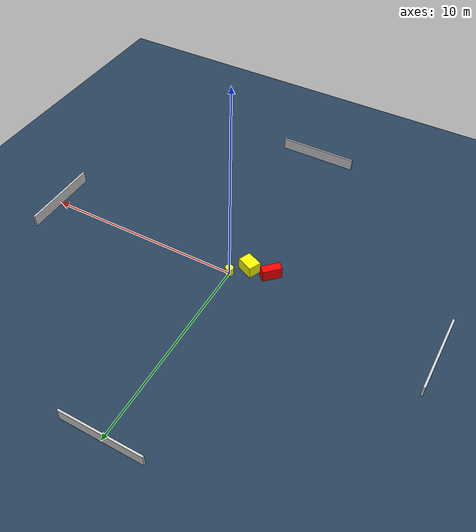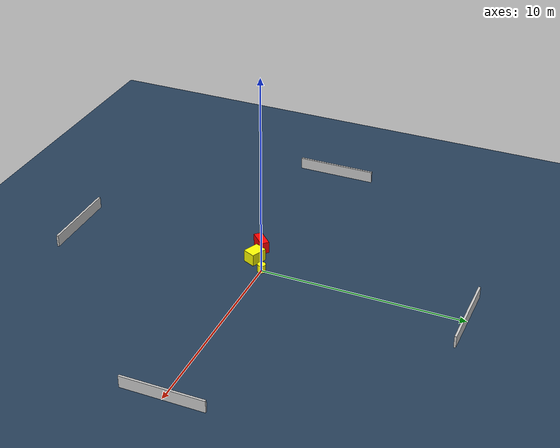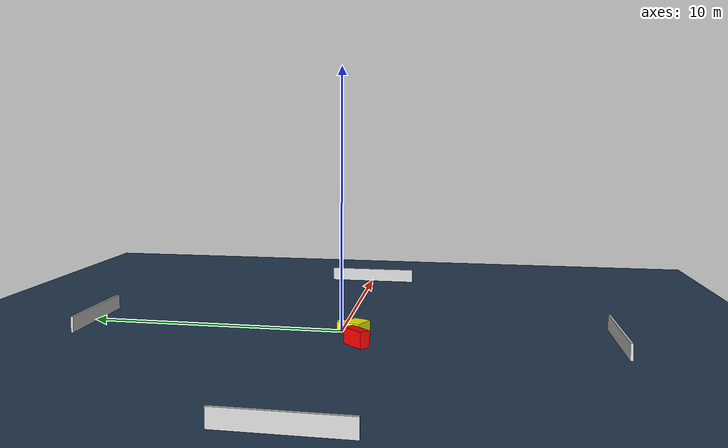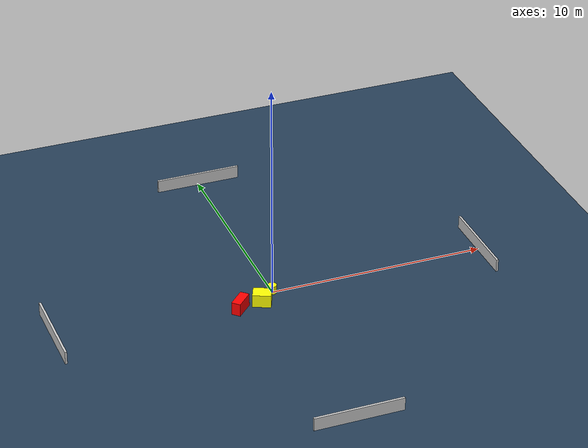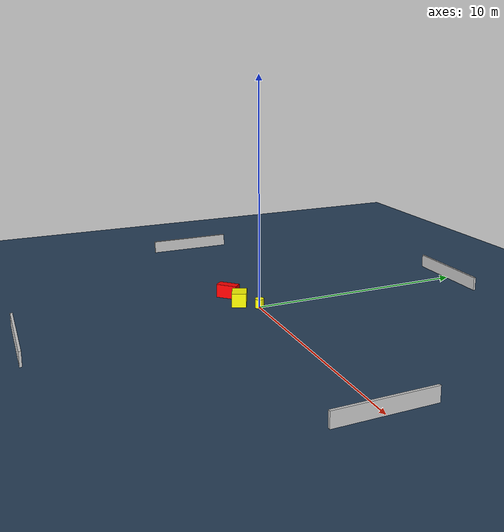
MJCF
<?xml version="1.0" ?>
<mujoco model="generated_environment">
  <option timestep="0.01" integrator="RK4" cone="elliptic"/>
  <default>
    <geom density="1"/>
  </default>
  <asset>
    <texture builtin="gradient" height="3072" name="skybox" rgb1="0.3 0.5 0.7" rgb2="0 0 0" type="skybox" width="512"/>
    <texture builtin="checker" height="300" name="groundplane" rgb1="0.2 0.3 0.4" rgb2="0.1 0.2 0.3" type="2d" width="300"/>
    <material name="groundplane" reflectance="0.2" texrepeat="5 5" texture="groundplane"/>
  </asset>
  <worldbody>
    <light dir="0 0 -1" directional="true" pos="0 0 1.5"/>
    <geom condim="3" friction="0.5 0.005 0.001" material="groundplane" name="floor" pos="0 0 0" size="0 0 0.05" type="plane"/>
    <body name="walls">
      <geom name="wall_1" condim="4" pos="-10.0 0.0 0.3" rgba="0.800000011920929 0.800000011920929 0.800000011920929 1.0" size="0.05 2.0 0.3" type="box"/>
      <geom name="wall_2" condim="4" pos="10.0 0.0 0.3" rgba="0.800000011920929 0.800000011920929 0.800000011920929 1.0" size="0.05 2.0 0.3" type="box"/>
      <geom name="wall_3" condim="4" pos="0.0 -10.0 0.3" rgba="0.800000011920929 0.800000011920929 0.800000011920929 1.0" size="2.0 0.05 0.3" type="box"/>
      <geom name="wall_4" condim="4" pos="0.0 10.0 0.3" rgba="0.800000011920929 0.800000011920929 0.800000011920929 1.0" size="2.0 0.05 0.3" type="box"/>
    </body>
    <body name="robot">
      <joint name="joint_x" type="slide" pos="0 0 0" axis="1 0 0"/>
      <joint name="joint_y" type="slide" pos="0 0 0" axis="0 1 0"/>
      <geom name="robot" type="cylinder" pos="0.0 0.0 0.2" size="0.2 0.2 0.0" mass="5.0" friction="1.0 0.005 0.0001" condim="4" rgba="1.0 1.0 0.0 1.0"/>
    </body>
    <body name="obstacle_1_movable">
      <geom name="obstacle_1_movable" condim="4" pos="-0.7151838832719913 -0.6569553108459807 0.3" euler="0 0 156.22348067241154" friction="0.0 0.005 0.001" rgba="1.0 1.0 0.0 1.0" size="0.41276837145266365 0.3199156154036686 0.3" type="box" mass="0.1"/>
      <joint type="free"/>
    </body>
    <body name="obstacle_2_static">
      <geom name="obstacle_2_static" condim="4" pos="-1.7722247341081667 -0.7905430693895273 0.3" euler="0 0 315.355392404197" friction="0.0 0.005 0.001" rgba="1.0 0.0 0.0 1.0" size="0.20925282936142994 0.4732491644973547 0.3" type="box"/>
    </body>
  </worldbody>
  <actuator>
    <motor name="actuator_x" joint="joint_x" gear="1" ctrlrange="-1 1"/>
    <motor name="actuator_y" joint="joint_y" gear="1" ctrlrange="-1 1"/>
  </actuator>
</mujoco>
